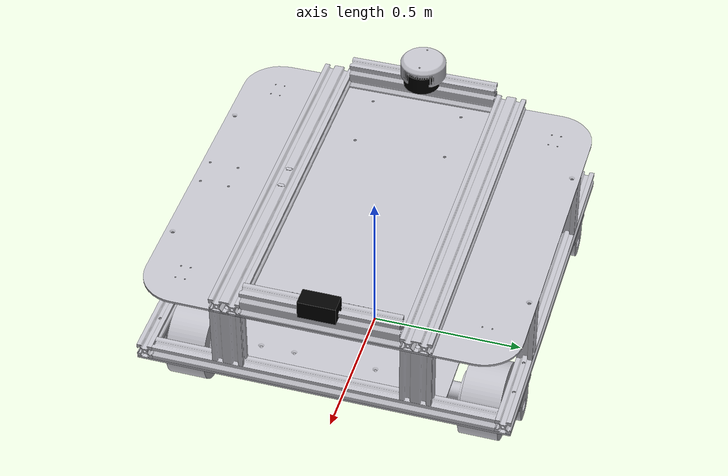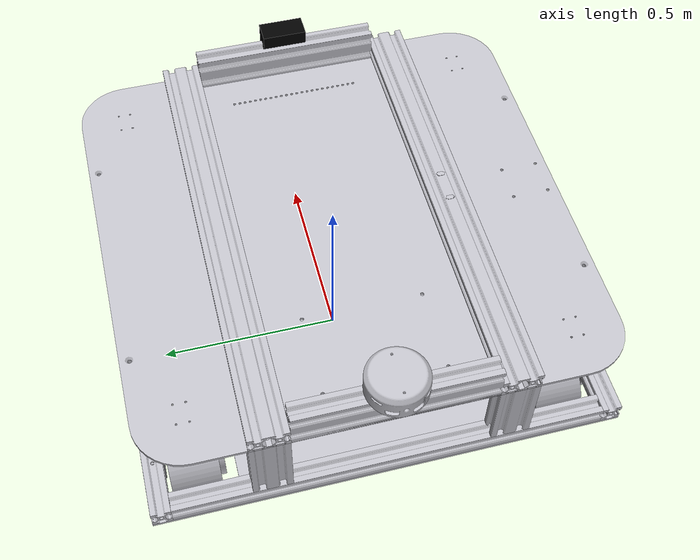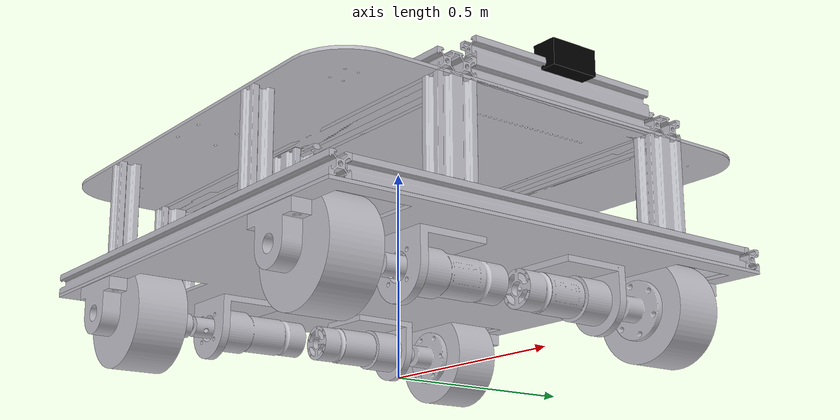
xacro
<?xml version="1.0" ?>
<robot name="robot" xmlns:xacro="http://www.ros.org/wiki/xacro">

<xacro:include filename="$(find robot_description)/urdf/materials.xacro" />
<xacro:include filename="$(find robot_description)/urdf/robot.trans" />
<xacro:include filename="$(find robot_description)/urdf/robot.gazebo" />
<link name="base_link">
  <inertial>
    <origin rpy="0 0 0" xyz="-0.00309061761326777 -0.00030390916317236114 0.09060103797235763"/>
    <mass value="1.590189451657794"/>
    <inertia ixx="0.026345" ixy="-0.0" ixz="0.0" iyy="0.028441" iyz="-0.0" izz="0.054784"/>
  </inertial>
  <visual>
    <origin rpy="0 0 0" xyz="0 0 0"/>
    <geometry>
      <mesh filename="package://robot_description/meshes/base_link.stl" scale="0.0025 0.0025 0.0025"/>
    </geometry>
    <material name="silver"/>
  </visual>
  <collision>
    <origin rpy="0 0 0" xyz="0 0 0"/>
    <geometry>
      <mesh filename="package://robot_description/meshes/base_link.stl" scale="0.0025 0.0025 0.0025"/>
    </geometry>
  </collision>
</link>

<link name="profile_44_1">
  <inertial>
    <origin rpy="0 0 0" xyz="-0.010000347544470378 0.22000009083682795 -0.007040513801406065"/>
    <mass value="0.20401900569973153"/>
    <inertia ixx="0.0033" ixy="0.0" ixz="0.0" iyy="1.7e-05" iyz="-0.0" izz="0.0033"/>
  </inertial>
  <visual>
    <origin rpy="0 0 0" xyz="-0.236909 0.220264 -0.109142"/>
    <geometry>
      <mesh filename="package://robot_description/meshes/profile_44_1.stl" scale="0.0025 0.0025 0.0025"/>
    </geometry>
    <material name="silver"/>
  </visual>
  <collision>
    <origin rpy="0 0 0" xyz="-0.236909 0.220264 -0.109142"/>
    <geometry>
      <mesh filename="package://robot_description/meshes/profile_44_1.stl" scale="0.0025 0.0025 0.0025"/>
    </geometry>
  </collision>
</link>

<link name="profile_442_1">
  <inertial>
    <origin rpy="0 0 0" xyz="0.00999965245553966 0.2200000908368263 -0.007040513801405232"/>
    <mass value="0.20401900569973153"/>
    <inertia ixx="0.0033" ixy="0.0" ixz="0.0" iyy="1.7e-05" iyz="-0.0" izz="0.0033"/>
  </inertial>
  <visual>
    <origin rpy="0 0 0" xyz="0.243091 0.220264 -0.109142"/>
    <geometry>
      <mesh filename="package://robot_description/meshes/profile_442_1.stl" scale="0.0025 0.0025 0.0025"/>
    </geometry>
    <material name="silver"/>
  </visual>
  <collision>
    <origin rpy="0 0 0" xyz="0.243091 0.220264 -0.109142"/>
    <geometry>
      <mesh filename="package://robot_description/meshes/profile_442_1.stl" scale="0.0025 0.0025 0.0025"/>
    </geometry>
  </collision>
</link>

<link name="profile_482_1">
  <inertial>
    <origin rpy="0 0 0" xyz="0.24000039308927013 0.009999495179222134 -0.007040513706950344"/>
    <mass value="0.22200152261792727"/>
    <inertia ixx="1.8e-05" ixy="0.0" ixz="-0.0" iyy="0.004268" iyz="0.0" izz="0.004268"/>
  </inertial>
  <visual>
    <origin rpy="0 0 0" xyz="0.243091 -0.219736 -0.109142"/>
    <geometry>
      <mesh filename="package://robot_description/meshes/profile_482_1.stl" scale="0.0025 0.0025 0.0025"/>
    </geometry>
    <material name="silver"/>
  </visual>
  <collision>
    <origin rpy="0 0 0" xyz="0.243091 -0.219736 -0.109142"/>
    <geometry>
      <mesh filename="package://robot_description/meshes/profile_482_1.stl" scale="0.0025 0.0025 0.0025"/>
    </geometry>
  </collision>
</link>

<link name="middle_rod_2040__1__1">
  <inertial>
    <origin rpy="0 0 0" xyz="0.4730903823867306 0.07914209083682801 -0.21973616546208025"/>
    <mass value="0.3571000353797566"/>
    <inertia ixx="0.005776" ixy="0.0" ixz="-0.0" iyy="7.2e-05" iyz="-0.0" izz="0.005819"/>
  </inertial>
  <visual>
    <origin rpy="0 0 0" xyz="0.476181 0.079406 -0.321838"/>
    <geometry>
      <mesh filename="package://robot_description/meshes/middle_rod_2040__1__1.stl" scale="0.0025 0.0025 0.0025"/>
    </geometry>
    <material name="silver"/>
  </visual>
  <collision>
    <origin rpy="0 0 0" xyz="0.476181 0.079406 -0.321838"/>
    <geometry>
      <mesh filename="package://robot_description/meshes/middle_rod_2040__1__1.stl" scale="0.0025 0.0025 0.0025"/>
    </geometry>
  </collision>
</link>

<link name="bearing_holder_1_1">
  <inertial>
    <origin rpy="0 0 0" xyz="-0.025999615271611348 9.083763691242197e-08 -0.019914289838183344"/>
    <mass value="0.2677927879110607"/>
    <inertia ixx="6.2e-05" ixy="0.0" ixz="-0.0" iyy="0.000112" iyz="-0.0" izz="6.4e-05"/>
  </inertial>
  <visual>
    <origin rpy="0 0 0" xyz="-0.179909 0.230304 -0.089102"/>
    <geometry>
      <mesh filename="package://robot_description/meshes/bearing_holder_1_1.stl" scale="0.0025 0.0025 0.0025"/>
    </geometry>
    <material name="silver"/>
  </visual>
  <collision>
    <origin rpy="0 0 0" xyz="-0.179909 0.230304 -0.089102"/>
    <geometry>
      <mesh filename="package://robot_description/meshes/bearing_holder_1_1.stl" scale="0.0025 0.0025 0.0025"/>
    </geometry>
  </collision>
</link>

<link name="bearing_holder_2_1">
  <inertial>
    <origin rpy="0 0 0" xyz="0.026000380045075794 9.083602606207997e-08 -0.019914289838182178"/>
    <mass value="0.2677927879110607"/>
    <inertia ixx="6.2e-05" ixy="0.0" ixz="0.0" iyy="0.000112" iyz="0.0" izz="6.4e-05"/>
  </inertial>
  <visual>
    <origin rpy="0 0 0" xyz="0.186091 0.230304 -0.089102"/>
    <geometry>
      <mesh filename="package://robot_description/meshes/bearing_holder_2_1.stl" scale="0.0025 0.0025 0.0025"/>
    </geometry>
    <material name="silver"/>
  </visual>
  <collision>
    <origin rpy="0 0 0" xyz="0.186091 0.230304 -0.089102"/>
    <geometry>
      <mesh filename="package://robot_description/meshes/bearing_holder_2_1.stl" scale="0.0025 0.0025 0.0025"/>
    </geometry>
  </collision>
</link>

<link name="bearing_holder_3_1">
  <inertial>
    <origin rpy="0 0 0" xyz="0.026000384724030823 9.083602051096484e-08 -0.019914289838181165"/>
    <mass value="0.2677927879110607"/>
    <inertia ixx="6.2e-05" ixy="0.0" ixz="0.0" iyy="0.000112" iyz="0.0" izz="6.4e-05"/>
  </inertial>
  <visual>
    <origin rpy="0 0 0" xyz="-0.127909 -0.229696 -0.089102"/>
    <geometry>
      <mesh filename="package://robot_description/meshes/bearing_holder_3_1.stl" scale="0.0025 0.0025 0.0025"/>
    </geometry>
    <material name="silver"/>
  </visual>
  <collision>
    <origin rpy="0 0 0" xyz="-0.127909 -0.229696 -0.089102"/>
    <geometry>
      <mesh filename="package://robot_description/meshes/bearing_holder_3_1.stl" scale="0.0025 0.0025 0.0025"/>
    </geometry>
  </collision>
</link>

<link name="bearing_holder_4_1">
  <inertial>
    <origin rpy="0 0 0" xyz="0.026000380045072602 9.083601928971952e-08 -0.01991428983817957"/>
    <mass value="0.2677927879110607"/>
    <inertia ixx="6.2e-05" ixy="0.0" ixz="0.0" iyy="0.000112" iyz="0.0" izz="6.4e-05"/>
  </inertial>
  <visual>
    <origin rpy="0 0 0" xyz="0.186091 -0.229696 -0.089102"/>
    <geometry>
      <mesh filename="package://robot_description/meshes/bearing_holder_4_1.stl" scale="0.0025 0.0025 0.0025"/>
    </geometry>
    <material name="silver"/>
  </visual>
  <collision>
    <origin rpy="0 0 0" xyz="0.186091 -0.229696 -0.089102"/>
    <geometry>
      <mesh filename="package://robot_description/meshes/bearing_holder_4_1.stl" scale="0.0025 0.0025 0.0025"/>
    </geometry>
  </collision>
</link>

<link name="motor_mount_1">
  <inertial>
    <origin rpy="0 0 0" xyz="-0.022785759551452622 0.0020302758013781425 -0.014479924146451828"/>
    <mass value="0.3401197239784417"/>
    <inertia ixx="0.00026" ixy="1e-06" ixz="1e-06" iyy="0.000204" iyz="-7e-05" izz="0.000266"/>
  </inertial>
  <visual>
    <origin rpy="0 0 0" xyz="-0.176909 0.096904 -0.089102"/>
    <geometry>
      <mesh filename="package://robot_description/meshes/motor_mount_1.stl" scale="0.0025 0.0025 0.0025"/>
    </geometry>
    <material name="silver"/>
  </visual>
  <collision>
    <origin rpy="0 0 0" xyz="-0.176909 0.096904 -0.089102"/>
    <geometry>
      <mesh filename="package://robot_description/meshes/motor_mount_1.stl" scale="0.0025 0.0025 0.0025"/>
    </geometry>
  </collision>
</link>

<link name="motor_1">
  <inertial>
    <origin rpy="0 0 0" xyz="5.958466901601067e-06 0.042741875275181834 -5.715485309358559e-06"/>
    <mass value="0.8370137484303758"/>
    <inertia ixx="0.000699" ixy="-0.0" ixz="0.0" iyy="0.000156" iyz="0.0" izz="0.000699"/>
  </inertial>
  <visual>
    <origin rpy="0 0 0" xyz="-0.153909 0.108904 -0.059102"/>
    <geometry>
      <mesh filename="package://robot_description/meshes/motor_1.stl" scale="0.0025 0.0025 0.0025"/>
    </geometry>
    <material name="silver"/>
  </visual>
  <collision>
    <origin rpy="0 0 0" xyz="-0.153909 0.108904 -0.059102"/>
    <geometry>
      <mesh filename="package://robot_description/meshes/motor_1.stl" scale="0.0025 0.0025 0.0025"/>
    </geometry>
  </collision>
</link>

<link name="axle_1">
  <inertial>
    <origin rpy="0 0 0" xyz="3.792954737513732e-07 -0.03564855080346235 -1.654586265983915e-07"/>
    <mass value="0.08717211323633788"/>
    <inertia ixx="0.000102" ixy="0.0" ixz="0.0" iyy="3e-06" iyz="-0.0" izz="0.000102"/>
  </inertial>
  <visual>
    <origin rpy="0 0 0" xyz="-0.153909 0.110904 -0.059102"/>
    <geometry>
      <mesh filename="package://robot_description/meshes/axle_1.stl" scale="0.0025 0.0025 0.0025"/>
    </geometry>
    <material name="silver"/>
  </visual>
  <collision>
    <origin rpy="0 0 0" xyz="-0.153909 0.110904 -0.059102"/>
    <geometry>
      <mesh filename="package://robot_description/meshes/axle_1.stl" scale="0.0025 0.0025 0.0025"/>
    </geometry>
  </collision>
</link>

<link name="hub_1">
  <inertial>
    <origin rpy="0 0 0" xyz="-0.1539096207045421 -0.08569847727407015 -0.13494407083088725"/>
    <mass value="0.17442407392693715"/>
    <inertia ixx="3.4e-05" ixy="0.0" ixz="0.0" iyy="5e-05" iyz="0.0" izz="3.5e-05"/>
  </inertial>
  <visual>
    <origin rpy="0 0 0" xyz="-0.307819 0.072802 -0.194006"/>
    <geometry>
      <mesh filename="package://robot_description/meshes/hub_1.stl" scale="0.0025 0.0025 0.0025"/>
    </geometry>
    <material name="silver"/>
  </visual>
  <collision>
    <origin rpy="0 0 0" xyz="-0.307819 0.072802 -0.194006"/>
    <geometry>
      <mesh filename="package://robot_description/meshes/hub_1.stl" scale="0.0025 0.0025 0.0025"/>
    </geometry>
  </collision>
</link>

<link name="mount2_1">
  <inertial>
    <origin rpy="0 0 0" xyz="0.022786524324914653 -0.04156972419862492 -0.014479924146450274"/>
    <mass value="0.3401197239784417"/>
    <inertia ixx="0.00026" ixy="-1e-06" ixz="-1e-06" iyy="0.000204" iyz="-7e-05" izz="0.000266"/>
  </inertial>
  <visual>
    <origin rpy="0 0 0" xyz="0.183091 0.053304 -0.089102"/>
    <geometry>
      <mesh filename="package://robot_description/meshes/mount2_1.stl" scale="0.0025 0.0025 0.0025"/>
    </geometry>
    <material name="silver"/>
  </visual>
  <collision>
    <origin rpy="0 0 0" xyz="0.183091 0.053304 -0.089102"/>
    <geometry>
      <mesh filename="package://robot_description/meshes/mount2_1.stl" scale="0.0025 0.0025 0.0025"/>
    </geometry>
  </collision>
</link>

<link name="motor2_1">
  <inertial>
    <origin rpy="0 0 0" xyz="-5.193631712779867e-06 0.042741875206195226 -5.715512338480555e-06"/>
    <mass value="0.8370137452657838"/>
    <inertia ixx="0.000699" ixy="0.0" ixz="-0.0" iyy="0.000156" iyz="0.0" izz="0.000699"/>
  </inertial>
  <visual>
    <origin rpy="0 0 0" xyz="0.160091 0.108904 -0.059102"/>
    <geometry>
      <mesh filename="package://robot_description/meshes/motor2_1.stl" scale="0.0025 0.0025 0.0025"/>
    </geometry>
    <material name="silver"/>
  </visual>
  <collision>
    <origin rpy="0 0 0" xyz="0.160091 0.108904 -0.059102"/>
    <geometry>
      <mesh filename="package://robot_description/meshes/motor2_1.stl" scale="0.0025 0.0025 0.0025"/>
    </geometry>
  </collision>
</link>

<link name="axle_2_1">
  <inertial>
    <origin rpy="0 0 0" xyz="3.8547488298568133e-07 -0.035648550803464824 -1.6546055164878837e-07"/>
    <mass value="0.08717211323633788"/>
    <inertia ixx="0.000102" ixy="0.0" ixz="-0.0" iyy="3e-06" iyz="-0.0" izz="0.000102"/>
  </inertial>
  <visual>
    <origin rpy="0 0 0" xyz="0.160091 0.110904 -0.059102"/>
    <geometry>
      <mesh filename="package://robot_description/meshes/axle_2_1.stl" scale="0.0025 0.0025 0.0025"/>
    </geometry>
    <material name="silver"/>
  </visual>
  <collision>
    <origin rpy="0 0 0" xyz="0.160091 0.110904 -0.059102"/>
    <geometry>
      <mesh filename="package://robot_description/meshes/axle_2_1.stl" scale="0.0025 0.0025 0.0025"/>
    </geometry>
  </collision>
</link>

<link name="hub_2_1">
  <inertial>
    <origin rpy="0 0 0" xyz="0.050816227046964035 0.03250552272592713 -0.20311671027306205"/>
    <mass value="0.1744240739269362"/>
    <inertia ixx="3.4e-05" ixy="-0.0" ixz="-0.0" iyy="5e-05" iyz="0.0" izz="3.4e-05"/>
  </inertial>
  <visual>
    <origin rpy="0 0 0" xyz="0.210871 0.191006 -0.262201"/>
    <geometry>
      <mesh filename="package://robot_description/meshes/hub_2_1.stl" scale="0.0025 0.0025 0.0025"/>
    </geometry>
    <material name="silver"/>
  </visual>
  <collision>
    <origin rpy="0 0 0" xyz="0.210871 0.191006 -0.262201"/>
    <geometry>
      <mesh filename="package://robot_description/meshes/hub_2_1.stl" scale="0.0025 0.0025 0.0025"/>
    </geometry>
  </collision>
</link>

<link name="mount_4_1">
  <inertial>
    <origin rpy="0 0 0" xyz="0.022786524324913737 -0.0020300941277232587 -0.014479924146449538"/>
    <mass value="0.3401197239784417"/>
    <inertia ixx="0.00026" ixy="1e-06" ixz="-1e-06" iyy="0.000204" iyz="7e-05" izz="0.000266"/>
  </inertial>
  <visual>
    <origin rpy="0 0 0" xyz="0.183091 -0.096296 -0.089102"/>
    <geometry>
      <mesh filename="package://robot_description/meshes/mount_4_1.stl" scale="0.0025 0.0025 0.0025"/>
    </geometry>
    <material name="silver"/>
  </visual>
  <collision>
    <origin rpy="0 0 0" xyz="0.183091 -0.096296 -0.089102"/>
    <geometry>
      <mesh filename="package://robot_description/meshes/mount_4_1.stl" scale="0.0025 0.0025 0.0025"/>
    </geometry>
  </collision>
</link>

<link name="mount_3_1">
  <inertial>
    <origin rpy="0 0 0" xyz="-0.022785759551454204 -0.002030094127721621 -0.014479924146450551"/>
    <mass value="0.3401197239784417"/>
    <inertia ixx="0.00026" ixy="-1e-06" ixz="1e-06" iyy="0.000204" iyz="7e-05" izz="0.000266"/>
  </inertial>
  <visual>
    <origin rpy="0 0 0" xyz="-0.176909 -0.096296 -0.089102"/>
    <geometry>
      <mesh filename="package://robot_description/meshes/mount_3_1.stl" scale="0.0025 0.0025 0.0025"/>
    </geometry>
    <material name="silver"/>
  </visual>
  <collision>
    <origin rpy="0 0 0" xyz="-0.176909 -0.096296 -0.089102"/>
    <geometry>
      <mesh filename="package://robot_description/meshes/mount_3_1.stl" scale="0.0025 0.0025 0.0025"/>
    </geometry>
  </collision>
</link>

<link name="motor_4_1">
  <inertial>
    <origin rpy="0 0 0" xyz="-5.193693440291858e-06 -0.04274169360152601 -5.715485306978518e-06"/>
    <mass value="0.8370137484303758"/>
    <inertia ixx="0.000699" ixy="-0.0" ixz="-0.0" iyy="0.000156" iyz="-0.0" izz="0.000699"/>
  </inertial>
  <visual>
    <origin rpy="0 0 0" xyz="0.160091 -0.108296 -0.059102"/>
    <geometry>
      <mesh filename="package://robot_description/meshes/motor_4_1.stl" scale="0.0025 0.0025 0.0025"/>
    </geometry>
    <material name="silver"/>
  </visual>
  <collision>
    <origin rpy="0 0 0" xyz="0.160091 -0.108296 -0.059102"/>
    <geometry>
      <mesh filename="package://robot_description/meshes/motor_4_1.stl" scale="0.0025 0.0025 0.0025"/>
    </geometry>
  </collision>
</link>

<link name="axle_4_1">
  <inertial>
    <origin rpy="0 0 0" xyz="3.854781351342318e-07 0.03564873247711814 -1.654586286523041e-07"/>
    <mass value="0.08717211323633788"/>
    <inertia ixx="0.000102" ixy="0.0" ixz="0.0" iyy="3e-06" iyz="0.0" izz="0.000102"/>
  </inertial>
  <visual>
    <origin rpy="0 0 0" xyz="0.160091 -0.110296 -0.059102"/>
    <geometry>
      <mesh filename="package://robot_description/meshes/axle_4_1.stl" scale="0.0025 0.0025 0.0025"/>
    </geometry>
    <material name="silver"/>
  </visual>
  <collision>
    <origin rpy="0 0 0" xyz="0.160091 -0.110296 -0.059102"/>
    <geometry>
      <mesh filename="package://robot_description/meshes/axle_4_1.stl" scale="0.0025 0.0025 0.0025"/>
    </geometry>
  </collision>
</link>

<link name="motor_3_1">
  <inertial>
    <origin rpy="0 0 0" xyz="5.958405172951098e-06 -0.04274169353254009 -5.7155123389107665e-06"/>
    <mass value="0.8370137452657838"/>
    <inertia ixx="0.000699" ixy="0.0" ixz="0.0" iyy="0.000156" iyz="-0.0" izz="0.000699"/>
  </inertial>
  <visual>
    <origin rpy="0 0 0" xyz="-0.153909 -0.108296 -0.059102"/>
    <geometry>
      <mesh filename="package://robot_description/meshes/motor_3_1.stl" scale="0.0025 0.0025 0.0025"/>
    </geometry>
    <material name="silver"/>
  </visual>
  <collision>
    <origin rpy="0 0 0" xyz="-0.153909 -0.108296 -0.059102"/>
    <geometry>
      <mesh filename="package://robot_description/meshes/motor_3_1.stl" scale="0.0025 0.0025 0.0025"/>
    </geometry>
  </collision>
</link>

<link name="axle_3_1">
  <inertial>
    <origin rpy="0 0 0" xyz="3.7929209714682166e-07 0.03564873247711958 -1.6546275848072778e-07"/>
    <mass value="0.08717211323633788"/>
    <inertia ixx="0.000102" ixy="-0.0" ixz="0.0" iyy="3e-06" iyz="-0.0" izz="0.000102"/>
  </inertial>
  <visual>
    <origin rpy="0 0 0" xyz="-0.153909 -0.110296 -0.059102"/>
    <geometry>
      <mesh filename="package://robot_description/meshes/axle_3_1.stl" scale="0.0025 0.0025 0.0025"/>
    </geometry>
    <material name="silver"/>
  </visual>
  <collision>
    <origin rpy="0 0 0" xyz="-0.153909 -0.110296 -0.059102"/>
    <geometry>
      <mesh filename="package://robot_description/meshes/axle_3_1.stl" scale="0.0025 0.0025 0.0025"/>
    </geometry>
  </collision>
</link>

<link name="hub_3_1">
  <inertial>
    <origin rpy="0 0 0" xyz="-0.10173947820980642 -0.032505341052272374 -0.17709339992491485"/>
    <mass value="0.1744240739269362"/>
    <inertia ixx="3.4e-05" ixy="0.0" ixz="0.0" iyy="5e-05" iyz="0.0" izz="3.4e-05"/>
  </inertial>
  <visual>
    <origin rpy="0 0 0" xyz="-0.255688 -0.190398 -0.236203"/>
    <geometry>
      <mesh filename="package://robot_description/meshes/hub_3_1.stl" scale="0.0025 0.0025 0.0025"/>
    </geometry>
    <material name="silver"/>
  </visual>
  <collision>
    <origin rpy="0 0 0" xyz="-0.255688 -0.190398 -0.236203"/>
    <geometry>
      <mesh filename="package://robot_description/meshes/hub_3_1.stl" scale="0.0025 0.0025 0.0025"/>
    </geometry>
  </collision>
</link>

<link name="Perfil2020_10_v7_1">
  <inertial>
    <origin rpy="0 0 0" xyz="-0.20710126927393502 0.24309036090561612 0.289803834537948"/>
    <mass value="0.039412762464719274"/>
    <inertia ixx="2.5e-05" ixy="-0.0" ixz="-0.0" iyy="2.5e-05" iyz="-0.0" izz="3e-06"/>
  </inertial>
  <visual>
    <origin rpy="0 0 0" xyz="-0.084011 0.473355 0.135202"/>
    <geometry>
      <mesh filename="package://robot_description/meshes/Perfil2020_10_v7_1.stl" scale="0.0025 0.0025 0.0025"/>
    </geometry>
    <material name="silver"/>
  </visual>
  <collision>
    <origin rpy="0 0 0" xyz="-0.084011 0.473355 0.135202"/>
    <geometry>
      <mesh filename="package://robot_description/meshes/Perfil2020_10_v7_1.stl" scale="0.0025 0.0025 0.0025"/>
    </geometry>
  </collision>
</link>

<link name="Perfil2020_10_v7__1__1">
  <inertial>
    <origin rpy="0 0 0" xyz="-0.20710126927393868 0.2430903609056087 -0.1701961654620522"/>
    <mass value="0.039412762464719274"/>
    <inertia ixx="2.5e-05" ixy="-0.0" ixz="-0.0" iyy="2.5e-05" iyz="-0.0" izz="3e-06"/>
  </inertial>
  <visual>
    <origin rpy="0 0 0" xyz="-0.084011 0.013355 -0.324798"/>
    <geometry>
      <mesh filename="package://robot_description/meshes/Perfil2020_10_v7__1__1.stl" scale="0.0025 0.0025 0.0025"/>
    </geometry>
    <material name="silver"/>
  </visual>
  <collision>
    <origin rpy="0 0 0" xyz="-0.084011 0.013355 -0.324798"/>
    <geometry>
      <mesh filename="package://robot_description/meshes/Perfil2020_10_v7__1__1.stl" scale="0.0025 0.0025 0.0025"/>
    </geometry>
  </collision>
</link>

<link name="Perfil2020_10_v7__7__1">
  <inertial>
    <origin rpy="0 0 0" xyz="0.032898034047395996 -0.23690963909438784 -0.18427616546207778"/>
    <mass value="0.039412762464719114"/>
    <inertia ixx="2.5e-05" ixy="0.0" ixz="-0.0" iyy="2.5e-05" iyz="0.0" izz="3e-06"/>
  </inertial>
  <visual>
    <origin rpy="0 0 0" xyz="-0.084011 -0.466645 -0.338878"/>
    <geometry>
      <mesh filename="package://robot_description/meshes/Perfil2020_10_v7__7__1.stl" scale="0.0025 0.0025 0.0025"/>
    </geometry>
    <material name="silver"/>
  </visual>
  <collision>
    <origin rpy="0 0 0" xyz="-0.084011 -0.466645 -0.338878"/>
    <geometry>
      <mesh filename="package://robot_description/meshes/Perfil2020_10_v7__7__1.stl" scale="0.0025 0.0025 0.0025"/>
    </geometry>
  </collision>
</link>

<link name="Perfil2020_10_v7__5__1">
  <inertial>
    <origin rpy="0 0 0" xyz="0.03289873072605677 -0.23690963909438167 0.2898038345379474"/>
    <mass value="0.039412762464719274"/>
    <inertia ixx="2.5e-05" ixy="-0.0" ixz="-0.0" iyy="2.5e-05" iyz="-0.0" izz="3e-06"/>
  </inertial>
  <visual>
    <origin rpy="0 0 0" xyz="-0.084011 -0.006645 0.135202"/>
    <geometry>
      <mesh filename="package://robot_description/meshes/Perfil2020_10_v7__5__1.stl" scale="0.0025 0.0025 0.0025"/>
    </geometry>
    <material name="silver"/>
  </visual>
  <collision>
    <origin rpy="0 0 0" xyz="-0.084011 -0.006645 0.135202"/>
    <geometry>
      <mesh filename="package://robot_description/meshes/Perfil2020_10_v7__5__1.stl" scale="0.0025 0.0025 0.0025"/>
    </geometry>
  </collision>
</link>

<link name="Perfil2040_height_v4_1">
  <inertial>
    <origin rpy="0 0 0" xyz="-0.08710161761325347 -0.34690890916317574 -0.18441919743626498"/>
    <mass value="0.06866840258532259"/>
    <inertia ixx="4.4e-05" ixy="0.0" ixz="0.0" iyy="5.2e-05" iyz="-0.0" izz="1.4e-05"/>
  </inertial>
  <visual>
    <origin rpy="0 0 0" xyz="-0.084011 -0.466645 -0.338878"/>
    <geometry>
      <mesh filename="package://robot_description/meshes/Perfil2040_height_v4_1.stl" scale="0.0025 0.0025 0.0025"/>
    </geometry>
    <material name="silver"/>
  </visual>
  <collision>
    <origin rpy="0 0 0" xyz="-0.084011 -0.466645 -0.338878"/>
    <geometry>
      <mesh filename="package://robot_description/meshes/Perfil2040_height_v4_1.stl" scale="0.0025 0.0025 0.0025"/>
    </geometry>
  </collision>
</link>

<link name="Perfil2040_height_v4__1__1">
  <inertial>
    <origin rpy="0 0 0" xyz="-0.0871016176132513 -0.126908909163168 0.2896608025637357"/>
    <mass value="0.06866840258532259"/>
    <inertia ixx="4.4e-05" ixy="0.0" ixz="0.0" iyy="5.2e-05" iyz="-0.0" izz="1.4e-05"/>
  </inertial>
  <visual>
    <origin rpy="0 0 0" xyz="-0.084011 -0.006645 0.135202"/>
    <geometry>
      <mesh filename="package://robot_description/meshes/Perfil2040_height_v4__1__1.stl" scale="0.0025 0.0025 0.0025"/>
    </geometry>
    <material name="silver"/>
  </visual>
  <collision>
    <origin rpy="0 0 0" xyz="-0.084011 -0.006645 0.135202"/>
    <geometry>
      <mesh filename="package://robot_description/meshes/Perfil2040_height_v4__1__1.stl" scale="0.0025 0.0025 0.0025"/>
    </geometry>
  </collision>
</link>

<link name="hub4_1">
  <inertial>
    <origin rpy="0 0 0" xyz="-0.15417033010791092 0.08569865894772645 0.14101496606385128"/>
    <mass value="0.17442407392693715"/>
    <inertia ixx="3.4e-05" ixy="-0.0" ixz="0.0" iyy="5e-05" iyz="-0.0" izz="3.5e-05"/>
  </inertial>
  <visual>
    <origin rpy="0 0 0" xyz="0.005922 -0.072194 0.081953"/>
    <geometry>
      <mesh filename="package://robot_description/meshes/hub4_1.stl" scale="0.0025 0.0025 0.0025"/>
    </geometry>
    <material name="silver"/>
  </visual>
  <collision>
    <origin rpy="0 0 0" xyz="0.005922 -0.072194 0.081953"/>
    <geometry>
      <mesh filename="package://robot_description/meshes/hub4_1.stl" scale="0.0025 0.0025 0.0025"/>
    </geometry>
  </collision>
</link>

<link name="profile_48_1">
  <inertial>
    <origin rpy="0 0 0" xyz="-0.09210160691072679 0.013130495179229734 0.2533034862930502"/>
    <mass value="0.22200152261792727"/>
    <inertia ixx="1.8e-05" ixy="0.0" ixz="-0.0" iyy="0.004268" iyz="0.0" izz="0.004268"/>
  </inertial>
  <visual>
    <origin rpy="0 0 0" xyz="-0.089011 0.243395 0.151202"/>
    <geometry>
      <mesh filename="package://robot_description/meshes/profile_48_1.stl" scale="0.0025 0.0025 0.0025"/>
    </geometry>
    <material name="silver"/>
  </visual>
  <collision>
    <origin rpy="0 0 0" xyz="-0.089011 0.243395 0.151202"/>
    <geometry>
      <mesh filename="package://robot_description/meshes/profile_48_1.stl" scale="0.0025 0.0025 0.0025"/>
    </geometry>
  </collision>
</link>

<link name="Wheel_v1_1">
  <inertial>
    <origin rpy="0 0 0" xyz="3.854779776768513e-07 0.025250091626587395 -1.6546207678991287e-07"/>
    <mass value="3.1135146692483344"/>
    <inertia ixx="0.002608" ixy="-0.0" ixz="-0.0" iyy="0.003892" iyz="0.0" izz="0.002608"/>
  </inertial>
  <visual>
    <origin rpy="0 0 0" xyz="0.160091 -0.165696 -0.059102"/>
    <geometry>
      <mesh filename="package://robot_description/meshes/Wheel_v1_1.stl" scale="0.0025 0.0025 0.0025"/>
    </geometry>
    <material name="silver"/>
  </visual>
  <collision>
    <origin rpy="0 0 0" xyz="0.160091 -0.165696 -0.059102"/>
    <geometry>
      <mesh filename="package://robot_description/meshes/Wheel_v1_1.stl" scale="0.0025 0.0025 0.0025"/>
    </geometry>
  </collision>
</link>

<link name="Wheel_v1__1__1">
  <inertial>
    <origin rpy="0 0 0" xyz="3.8547797978627507e-07 -0.02524990995293344 -1.6546207739359664e-07"/>
    <mass value="3.1135146692483344"/>
    <inertia ixx="0.002608" ixy="0.0" ixz="-0.0" iyy="0.003892" iyz="-0.0" izz="0.002608"/>
  </inertial>
  <visual>
    <origin rpy="0 0 0" xyz="0.160091 0.166304 -0.059102"/>
    <geometry>
      <mesh filename="package://robot_description/meshes/Wheel_v1__1__1.stl" scale="0.0025 0.0025 0.0025"/>
    </geometry>
    <material name="silver"/>
  </visual>
  <collision>
    <origin rpy="0 0 0" xyz="0.160091 0.166304 -0.059102"/>
    <geometry>
      <mesh filename="package://robot_description/meshes/Wheel_v1__1__1.stl" scale="0.0025 0.0025 0.0025"/>
    </geometry>
  </collision>
</link>

<link name="Wheel_v1__3__1">
  <inertial>
    <origin rpy="0 0 0" xyz="3.792954823833572e-07 -0.025249909952931027 -1.654620784691252e-07"/>
    <mass value="3.1135146692483344"/>
    <inertia ixx="0.002608" ixy="-0.0" ixz="0.0" iyy="0.003892" iyz="0.0" izz="0.002608"/>
  </inertial>
  <visual>
    <origin rpy="0 0 0" xyz="-0.153909 0.166304 -0.059102"/>
    <geometry>
      <mesh filename="package://robot_description/meshes/Wheel_v1__3__1.stl" scale="0.0025 0.0025 0.0025"/>
    </geometry>
    <material name="silver"/>
  </visual>
  <collision>
    <origin rpy="0 0 0" xyz="-0.153909 0.166304 -0.059102"/>
    <geometry>
      <mesh filename="package://robot_description/meshes/Wheel_v1__3__1.stl" scale="0.0025 0.0025 0.0025"/>
    </geometry>
  </collision>
</link>

<link name="Wheel_v1__2__1">
  <inertial>
    <origin rpy="0 0 0" xyz="3.792954809955784e-07 0.025250091626588478 -1.654620777752358e-07"/>
    <mass value="3.1135146692483344"/>
    <inertia ixx="0.002608" ixy="-0.0" ixz="0.0" iyy="0.003892" iyz="0.0" izz="0.002608"/>
  </inertial>
  <visual>
    <origin rpy="0 0 0" xyz="-0.153909 -0.165696 -0.059102"/>
    <geometry>
      <mesh filename="package://robot_description/meshes/Wheel_v1__2__1.stl" scale="0.0025 0.0025 0.0025"/>
    </geometry>
    <material name="silver"/>
  </visual>
  <collision>
    <origin rpy="0 0 0" xyz="-0.153909 -0.165696 -0.059102"/>
    <geometry>
      <mesh filename="package://robot_description/meshes/Wheel_v1__2__1.stl" scale="0.0025 0.0025 0.0025"/>
    </geometry>
  </collision>
</link>

<link name="Perfil2040_height_v5_1">
  <inertial>
    <origin rpy="0 0 0" xyz="-0.317101617613266 0.1331710908368423 -0.1844191974362635"/>
    <mass value="0.06866840258532278"/>
    <inertia ixx="5.2e-05" ixy="-0.0" ixz="0.0" iyy="4.4e-05" iyz="0.0" izz="1.4e-05"/>
  </inertial>
  <visual>
    <origin rpy="0 0 0" xyz="-0.084011 0.013355 -0.338878"/>
    <geometry>
      <mesh filename="package://robot_description/meshes/Perfil2040_height_v5_1.stl" scale="0.0025 0.0025 0.0025"/>
    </geometry>
    <material name="silver"/>
  </visual>
  <collision>
    <origin rpy="0 0 0" xyz="-0.084011 0.013355 -0.338878"/>
    <geometry>
      <mesh filename="package://robot_description/meshes/Perfil2040_height_v5_1.stl" scale="0.0025 0.0025 0.0025"/>
    </geometry>
  </collision>
</link>

<link name="Perfil2040_height_v5__1__1">
  <inertial>
    <origin rpy="0 0 0" xyz="-0.3171016176132646 0.35309109083684914 0.27558080256373674"/>
    <mass value="0.06866840258532278"/>
    <inertia ixx="5.2e-05" ixy="0.0" ixz="0.0" iyy="4.4e-05" iyz="0.0" izz="1.4e-05"/>
  </inertial>
  <visual>
    <origin rpy="0 0 0" xyz="-0.084011 0.473355 0.121122"/>
    <geometry>
      <mesh filename="package://robot_description/meshes/Perfil2040_height_v5__1__1.stl" scale="0.0025 0.0025 0.0025"/>
    </geometry>
    <material name="silver"/>
  </visual>
  <collision>
    <origin rpy="0 0 0" xyz="-0.084011 0.473355 0.121122"/>
    <geometry>
      <mesh filename="package://robot_description/meshes/Perfil2040_height_v5__1__1.stl" scale="0.0025 0.0025 0.0025"/>
    </geometry>
  </collision>
</link>

<link name="Perfil2040_height_v5__2__1">
  <inertial>
    <origin rpy="0 0 0" xyz="0.1428983823867281 -0.12682890916314635 0.27558080256373507"/>
    <mass value="0.06866840258532278"/>
    <inertia ixx="5.2e-05" ixy="-0.0" ixz="0.0" iyy="4.4e-05" iyz="0.0" izz="1.4e-05"/>
  </inertial>
  <visual>
    <origin rpy="0 0 0" xyz="-0.084011 -0.006645 0.121122"/>
    <geometry>
      <mesh filename="package://robot_description/meshes/Perfil2040_height_v5__2__1.stl" scale="0.0025 0.0025 0.0025"/>
    </geometry>
    <material name="silver"/>
  </visual>
  <collision>
    <origin rpy="0 0 0" xyz="-0.084011 -0.006645 0.121122"/>
    <geometry>
      <mesh filename="package://robot_description/meshes/Perfil2040_height_v5__2__1.stl" scale="0.0025 0.0025 0.0025"/>
    </geometry>
  </collision>
</link>

<link name="Perfil2040_height_v5__3__1">
  <inertial>
    <origin rpy="0 0 0" xyz="0.14289838238672622 -0.34690890916315426 -0.17033919743626638"/>
    <mass value="0.06866840258532278"/>
    <inertia ixx="5.2e-05" ixy="0.0" ixz="0.0" iyy="4.4e-05" iyz="0.0" izz="1.4e-05"/>
  </inertial>
  <visual>
    <origin rpy="0 0 0" xyz="-0.084011 -0.466645 -0.324798"/>
    <geometry>
      <mesh filename="package://robot_description/meshes/Perfil2040_height_v5__3__1.stl" scale="0.0025 0.0025 0.0025"/>
    </geometry>
    <material name="silver"/>
  </visual>
  <collision>
    <origin rpy="0 0 0" xyz="-0.084011 -0.466645 -0.324798"/>
    <geometry>
      <mesh filename="package://robot_description/meshes/Perfil2040_height_v5__3__1.stl" scale="0.0025 0.0025 0.0025"/>
    </geometry>
  </collision>
</link>

<link name="2040_rails_v3_1">
  <inertial>
    <origin rpy="0 0 0" xyz="0.23989985827551433 -0.017039909163170455 0.009999834537921998"/>
    <mass value="0.38924684343760535"/>
    <inertia ixx="7.8e-05" ixy="-0.0" ixz="0.0" iyy="0.007491" iyz="-0.0" izz="0.007537"/>
  </inertial>
  <visual>
    <origin rpy="0 0 0" xyz="0.243091 -0.136856 -0.197102"/>
    <geometry>
      <mesh filename="package://robot_description/meshes/2040_rails_v3_1.stl" scale="0.0025 0.0025 0.0025"/>
    </geometry>
    <material name="silver"/>
  </visual>
  <collision>
    <origin rpy="0 0 0" xyz="0.243091 -0.136856 -0.197102"/>
    <geometry>
      <mesh filename="package://robot_description/meshes/2040_rails_v3_1.stl" scale="0.0025 0.0025 0.0025"/>
    </geometry>
  </collision>
</link>

<link name="2040_rails_v3__1__1">
  <inertial>
    <origin rpy="0 0 0" xyz="0.23989985827551524 -0.01703990916316371 0.009999834537923052"/>
    <mass value="0.38924684343760535"/>
    <inertia ixx="7.8e-05" ixy="-0.0" ixz="0.0" iyy="0.007491" iyz="-0.0" izz="0.007537"/>
  </inertial>
  <visual>
    <origin rpy="0 0 0" xyz="0.243091 0.103224 -0.197102"/>
    <geometry>
      <mesh filename="package://robot_description/meshes/2040_rails_v3__1__1.stl" scale="0.0025 0.0025 0.0025"/>
    </geometry>
    <material name="silver"/>
  </visual>
  <collision>
    <origin rpy="0 0 0" xyz="0.243091 0.103224 -0.197102"/>
    <geometry>
      <mesh filename="package://robot_description/meshes/2040_rails_v3__1__1.stl" scale="0.0025 0.0025 0.0025"/>
    </geometry>
  </collision>
</link>

<link name="second_floor_v20_1">
  <inertial>
    <origin rpy="0 0 0" xyz="-0.12010238819103765 -0.23130653785709582 0.0015177954565668839"/>
    <mass value="1.8496378129915427"/>
    <inertia ixx="0.034902" ixy="0.0" ixz="-0.0" iyy="0.034802" iyz="4e-06" izz="0.069699"/>
  </inertial>
  <visual>
    <origin rpy="0 0 0" xyz="-0.116909 -0.229736 -0.197102"/>
    <geometry>
      <mesh filename="package://robot_description/meshes/second_floor_v20_1.stl" scale="0.0025 0.0025 0.0025"/>
    </geometry>
    <material name="silver"/>
  </visual>
  <collision>
    <origin rpy="0 0 0" xyz="-0.116909 -0.229736 -0.197102"/>
    <geometry>
      <mesh filename="package://robot_description/meshes/second_floor_v20_1.stl" scale="0.0025 0.0025 0.0025"/>
    </geometry>
  </collision>
</link>

<link name="Perfil2040_200_v2_1">
  <inertial>
    <origin rpy="0 0 0" xyz="-0.009999617613264206 -0.09999990916317342 0.01703983453794075"/>
    <mass value="0.16231819789988966"/>
    <inertia ixx="0.000567" ixy="0.0" ixz="-0.0" iyy="3.3e-05" iyz="0.0" izz="0.000548"/>
  </inertial>
  <visual>
    <origin rpy="0 0 0" xyz="-0.236909 -0.099816 -0.200062"/>
    <geometry>
      <mesh filename="package://robot_description/meshes/Perfil2040_200_v2_1.stl" scale="0.0025 0.0025 0.0025"/>
    </geometry>
    <material name="silver"/>
  </visual>
  <collision>
    <origin rpy="0 0 0" xyz="-0.236909 -0.099816 -0.200062"/>
    <geometry>
      <mesh filename="package://robot_description/meshes/Perfil2040_200_v2_1.stl" scale="0.0025 0.0025 0.0025"/>
    </geometry>
  </collision>
</link>

<link name="Perfil2040_200_v2__1__1">
  <inertial>
    <origin rpy="0 0 0" xyz="0.010000382386735257 -0.09999990916317802 0.017039834537943582"/>
    <mass value="0.16231819789988966"/>
    <inertia ixx="0.000567" ixy="0.0" ixz="-0.0" iyy="3.3e-05" iyz="0.0" izz="0.000548"/>
  </inertial>
  <visual>
    <origin rpy="0 0 0" xyz="0.243091 -0.099816 -0.200062"/>
    <geometry>
      <mesh filename="package://robot_description/meshes/Perfil2040_200_v2__1__1.stl" scale="0.0025 0.0025 0.0025"/>
    </geometry>
    <material name="silver"/>
  </visual>
  <collision>
    <origin rpy="0 0 0" xyz="0.243091 -0.099816 -0.200062"/>
    <geometry>
      <mesh filename="package://robot_description/meshes/Perfil2040_200_v2__1__1.stl" scale="0.0025 0.0025 0.0025"/>
    </geometry>
  </collision>
</link>

<link name="lidar-intel">
  <inertial>
    <origin rpy="0 0 0" xyz="-0.00018740221523455558 -0.33078445920422045 -0.20862707229499267"/>
    <mass value="0.41232828494277746"/>
    <inertia ixx="0.000118" ixy="1e-06" ixz="0.0" iyy="0.000108" iyz="0.0" izz="0.000186"/>
  </inertial>
  <visual>
    <origin rpy="0 0 0" xyz="0.232907 -0.330818 -0.460192"/>
    <geometry>
      <mesh filename="package://robot_description/meshes/lidar-intel_v1_1.stl" scale="0.0025 0.0025 0.0025"/>
    </geometry>
    <material name="silver"/>
  </visual>
  <collision>
    <origin rpy="0 0 0" xyz="0.232907 -0.330818 -0.460192"/>
    <geometry>
      <mesh filename="package://robot_description/meshes/lidar-intel_v1_1.stl" scale="0.0025 0.0025 0.0025"/>
    </geometry>
  </collision>
</link>

<link name="lidar">
    <inertial>
      <origin xyz="0 0 0" rpy="0 0 0" />
      <mass value="0.01" />
      <inertia ixx="1e-6" ixy="0" ixz="0" iyy="1e-6" iyz="0" izz="1e-6" />
    </inertial>
    <visual>
      <origin xyz="0 0 0" rpy="0 0 0" />
      <geometry>
        <cylinder radius="0.06" length="0.06"/>
      </geometry>
      <material name="">
        <color rgba="0 0 0 1" />
      </material>
    </visual>
    <collision>
      <origin xyz="0 0 0" rpy="0 0 0" />
      <geometry>
        <cylinder radius="0.06" length="0.06"/>
      </geometry>
    </collision>
</link>

<link name="depth_cam">
    <inertial>
      <origin xyz="0 0 0" rpy="0 0 0" />
      <mass value="0.01" />
      <inertia ixx="1e-6" ixy="0" ixz="0" iyy="1e-6" iyz="0" izz="1e-6" />
    </inertial>
    <visual>
      <origin xyz="0 0 0" rpy="0 0 0" />
      <geometry>
        <box size="0.06 0.12 0.06"/>
      </geometry>
      <material name="">
        <color rgba="0 0 0 1" />
      </material>
    </visual>
    <collision>
      <origin xyz="0 0 0" rpy="0 0 0" />
      <geometry>
        <box size="0.06 0.12 0.06"/>
      </geometry>
    </collision>
</link>

<joint name="Rigid1" type="fixed">
  <origin rpy="0 0 0" xyz="0.147898 0.023131 0.260344"/>
  <parent link="profile_48_1"/>
  <child link="profile_44_1"/>
</joint>

<joint name="Rigid2" type="fixed">
  <origin rpy="0 0 0" xyz="-0.332102 0.023131 0.260344"/>
  <parent link="profile_48_1"/>
  <child link="profile_442_1"/>
</joint>

<joint name="Rigid3" type="fixed">
  <origin rpy="0 0 0" xyz="0.0 0.44 0.0"/>
  <parent link="profile_442_1"/>
  <child link="profile_482_1"/>
</joint>

<joint name="Rigid5" type="fixed">
  <origin rpy="0 0 0" xyz="-0.23309 0.140858 0.212696"/>
  <parent link="profile_442_1"/>
  <child link="middle_rod_2040__1__1"/>
</joint>

<joint name="Rigid6" type="fixed">
  <origin rpy="0 0 0" xyz="0.179909 -0.230304 0.089102"/>
  <parent link="base_link"/>
  <child link="bearing_holder_1_1"/>
</joint>

<joint name="Rigid7" type="fixed">
  <origin rpy="0 0 0" xyz="-0.186091 -0.230304 0.089102"/>
  <parent link="base_link"/>
  <child link="bearing_holder_2_1"/>
</joint>

<joint name="Rigid8" type="fixed">
  <origin rpy="0 0 0" xyz="0.127909 0.229696 0.089102"/>
  <parent link="base_link"/>
  <child link="bearing_holder_3_1"/>
</joint>

<joint name="Rigid9" type="fixed">
  <origin rpy="0 0 0" xyz="-0.186091 0.229696 0.089102"/>
  <parent link="base_link"/>
  <child link="bearing_holder_4_1"/>
</joint>

<joint name="Rigid10" type="fixed">
  <origin rpy="0 0 0" xyz="0.176909 -0.096904 0.089102"/>
  <parent link="base_link"/>
  <child link="motor_mount_1"/>
</joint>

<joint name="motor1" type="fixed">
  <origin rpy="0 0 0" xyz="-0.023 -0.012 -0.03"/>
  <parent link="motor_mount_1"/>
  <child link="motor_1"/>
</joint>

<joint name="Rev12" type="continuous">
  <origin rpy="0 0 0" xyz="0.0 -0.002 0.0"/>
  <parent link="motor_1"/>
  <child link="axle_1"/>
  <axis xyz="0.0 -1.0 0.0"/>
</joint>

<joint name="Rigid13" type="fixed">
  <origin rpy="0 0 0" xyz="0.15391 0.038102 0.134904"/>
  <parent link="axle_1"/>
  <child link="hub_1"/>
</joint>

<joint name="Rigid14" type="fixed">
  <origin rpy="0 0 0" xyz="-0.183091 -0.053304 0.089102"/>
  <parent link="base_link"/>
  <child link="mount2_1"/>
</joint>

<joint name="motor2" type="fixed">
  <origin rpy="0 0 0" xyz="0.023 -0.0556 -0.03"/>
  <parent link="mount2_1"/>
  <child link="motor2_1"/>
</joint>

<joint name="Rev16" type="continuous">
  <origin rpy="0 0 0" xyz="0.0 -0.002 0.0"/>
  <parent link="motor2_1"/>
  <child link="axle_2_1"/>
  <axis xyz="-0.0 1.0 -0.0"/>
</joint>

<joint name="Rigid17" type="fixed">
  <origin rpy="0 0 0" xyz="-0.05078 -0.080102 0.203099"/>
  <parent link="axle_2_1"/>
  <child link="hub_2_1"/>
</joint>

<joint name="Rigid18" type="fixed">
  <origin rpy="0 0 0" xyz="-0.183091 0.096296 0.089102"/>
  <parent link="base_link"/>
  <child link="mount_4_1"/>
</joint>

<joint name="Rigid19" type="fixed">
  <origin rpy="0 0 0" xyz="0.176909 0.096296 0.089102"/>
  <parent link="base_link"/>
  <child link="mount_3_1"/>
</joint>

<joint name="motor4" type="fixed">
  <origin rpy="0 0 0" xyz="0.023 0.012 -0.03"/>
  <parent link="mount_4_1"/>
  <child link="motor_4_1"/>
</joint>

<joint name="Rev21" type="continuous">
  <origin rpy="0 0 0" xyz="0.0 0.002 0.0"/>
  <parent link="motor_4_1"/>
  <child link="axle_4_1"/>
  <axis xyz="-0.0 1.0 -0.0"/>
</joint>

<joint name="motor3" type="fixed">
  <origin rpy="0 0 0" xyz="-0.023 0.012 -0.03"/>
  <parent link="mount_3_1"/>
  <child link="motor_3_1"/>
</joint>

<joint name="Rev24" type="continuous">
  <origin rpy="0 0 0" xyz="0.0 0.002 0.0"/>
  <parent link="motor_3_1"/>
  <child link="axle_3_1"/>
  <axis xyz="0.0 -1.0 0.0"/>
</joint>

<joint name="Rigid25" type="fixed">
  <origin rpy="0 0 0" xyz="0.101779 0.080102 0.177101"/>
  <parent link="axle_3_1"/>
  <child link="hub_3_1"/>
</joint>

<joint name="Rigid28" type="fixed">
  <origin rpy="0 0 0" xyz="-0.005 -0.22996 0.016"/>
  <parent link="profile_48_1"/>
  <child link="Perfil2020_10_v7_1"/>
</joint>

<joint name="Rigid29" type="fixed">
  <origin rpy="0 0 0" xyz="0.327102 -0.233091 0.215656"/>
  <parent link="profile_482_1"/>
  <child link="Perfil2020_10_v7__1__1"/>
</joint>

<joint name="Rigid33" type="fixed">
  <origin rpy="0 0 0" xyz="0.327102 0.246909 0.229736"/>
  <parent link="profile_482_1"/>
  <child link="Perfil2020_10_v7__7__1"/>
</joint>

<joint name="Rigid34" type="fixed">
  <origin rpy="0 0 0" xyz="-0.005 0.25004 0.016"/>
  <parent link="profile_48_1"/>
  <child link="Perfil2020_10_v7__5__1"/>
</joint>

<joint name="Rigid35" type="fixed">
  <origin rpy="0 0 0" xyz="0.327102 0.246909 0.229736"/>
  <parent link="profile_482_1"/>
  <child link="Perfil2040_height_v4_1"/>
</joint>

<joint name="Rigid36" type="fixed">
  <origin rpy="0 0 0" xyz="-0.005 0.25004 0.016"/>
  <parent link="profile_48_1"/>
  <child link="Perfil2040_height_v4__1__1"/>
</joint>

<joint name="Rigid39" type="fixed">
  <origin rpy="0 0 0" xyz="0.154169 -0.038102 -0.141055"/>
  <parent link="axle_4_1"/>
  <child link="hub4_1"/>
</joint>

<joint name="Rigid43" type="fixed">
  <origin rpy="0 0 0" xyz="0.089011 -0.243395 -0.151202"/>
  <parent link="base_link"/>
  <child link="profile_48_1"/>
</joint>

<joint name="Rigid44" type="fixed">
  <origin rpy="0 0 0" xyz="-0.154169 0.093502 0.141055"/>
  <parent link="hub4_1"/>
  <child link="Wheel_v1_1"/>
</joint>

<joint name="Rigid45" type="fixed">
  <origin rpy="0 0 0" xyz="0.05078 0.024702 -0.203099"/>
  <parent link="hub_2_1"/>
  <child link="Wheel_v1__1__1"/>
</joint>

<joint name="Rigid46" type="fixed">
  <origin rpy="0 0 0" xyz="-0.15391 -0.093502 -0.134904"/>
  <parent link="hub_1"/>
  <child link="Wheel_v1__3__1"/>
</joint>

<joint name="Rigid47" type="fixed">
  <origin rpy="0 0 0" xyz="-0.101779 -0.024702 -0.177101"/>
  <parent link="hub_3_1"/>
  <child link="Wheel_v1__2__1"/>
</joint>

<joint name="Rigid48" type="fixed">
  <origin rpy="0 0 0" xyz="0.327102 -0.233091 0.229736"/>
  <parent link="profile_482_1"/>
  <child link="Perfil2040_height_v5_1"/>
</joint>

<joint name="Rigid49" type="fixed">
  <origin rpy="0 0 0" xyz="-0.005 -0.22996 0.03008"/>
  <parent link="profile_48_1"/>
  <child link="Perfil2040_height_v5__1__1"/>
</joint>

<joint name="Rigid50" type="fixed">
  <origin rpy="0 0 0" xyz="-0.005 0.25004 0.03008"/>
  <parent link="profile_48_1"/>
  <child link="Perfil2040_height_v5__2__1"/>
</joint>

<joint name="Rigid51" type="fixed">
  <origin rpy="0 0 0" xyz="0.327102 0.246909 0.215656"/>
  <parent link="profile_482_1"/>
  <child link="Perfil2040_height_v5__3__1"/>
</joint>

<joint name="Rigid52" type="fixed">
  <origin rpy="0 0 0" xyz="-0.327102 0.150211 -0.141776"/>
  <parent link="Perfil2040_height_v5_1"/>
  <child link="2040_rails_v3_1"/>
</joint>

<joint name="Rigid53" type="fixed">
  <origin rpy="0 0 0" xyz="-0.327102 0.370131 0.318224"/>
  <parent link="Perfil2040_height_v5__1__1"/>
  <child link="2040_rails_v3__1__1"/>
</joint>

<joint name="Rigid54" type="fixed">
  <origin rpy="0 0 0" xyz="0.032898 -0.236909 -0.141776"/>
  <parent link="Perfil2020_10_v7__7__1"/>
  <child link="second_floor_v20_1"/>
</joint>

<joint name="Rigid55" type="fixed">
  <origin rpy="0 0 0" xyz="0.48 -0.03704 0.00296"/>
  <parent link="2040_rails_v3_1"/>
  <child link="Perfil2040_200_v2_1"/>
</joint>

<joint name="Rigid56" type="fixed">
  <origin rpy="0 0 0" xyz="0.0 -0.03704 0.00296"/>
  <parent link="2040_rails_v3_1"/>
  <child link="Perfil2040_200_v2__1__1"/>
</joint>

<joint name="Rigid59" type="fixed">
  <origin rpy="0 0 0" xyz="0.010184 0.231002 0.26013"/>
  <parent link="Perfil2040_200_v2__1__1"/>
  <child link="lidar-intel"/>
</joint>

<joint name="Rigid60" type="fixed">
  <origin rpy="0 0 0" xyz="-0.80 -0.1 0.40"/>
  <parent link="Perfil2040_200_v2_1"/>
  <child link="lidar"/>
</joint>

<joint name="Rigid61" type="fixed">
  <origin rpy="0 0 0" xyz="0.35 -0.1 0.40"/>
  <parent link="Perfil2040_200_v2_1"/>
  <child link="depth_cam"/>
</joint>
</robot>

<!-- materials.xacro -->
<robot name="test" xmlns:xacro="http://www.ros.org/wiki/xacro" >

<material name="silver_default">
  <color rgba="0.700 0.700 0.700 1.000"/>
</material>
<material name="opaque160160160">
  <color rgba="0.6274509803921569 0.6274509803921569 0.6274509803921569 1.0"/>
</material>
<material name="opaque23217335">
  <color rgba="0.9098039215686274 0.6784313725490196 0.13725490196078433 1.0"/>
</material>
<material name="opaque6815072">
  <color rgba="0.26666666666666666 0.5882352941176471 0.2823529411764706 1.0"/>
</material>
<material name="opaque251250245">
  <color rgba="0.984313725490196 0.9803921568627451 0.9607843137254902 1.0"/>
</material>
<material name="opaque89149218">
  <color rgba="0.34901960784313724 0.5843137254901961 0.8549019607843137 1.0"/>
</material>
<material name="steel_satin">
  <color rgba="0.6274509803921569 0.6274509803921569 0.6274509803921569 1.0"/>
</material>

</robot>

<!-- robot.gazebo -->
<robot name="robot" xmlns:xacro="http://www.ros.org/wiki/xacro" >

<xacro:property name="wheel_color" value="Gazebo/Silver" />
<xacro:property name="body_color" value="Gazebo/Black" />
<xacro:property name="floor_color" value="Gazebo/Blue" />
<!-- Plugins -->
<gazebo>
    <plugin name="object_controller" filename="libgazebo_ros_planar_move.so">
      <commandTopic>cmd_vel</commandTopic>
      <odometryTopic>odom</odometryTopic>
      <odometryFrame>odom</odometryFrame>
      <odometryRate>20.0</odometryRate>
      <robotBaseFrame>base_link</robotBaseFrame>
    </plugin>
  </gazebo>

      <!--plugin name="gazebo_ros_head_hokuyo_controller" filename="libgazebo_ros_gpu_laser.so"-->
   <gazebo reference="depth_cam">
    <sensor type="depth" name="depth_cam">
    <update_rate>20</update_rate>
    <camera>
      <horizontal_fov>1.047198</horizontal_fov>
      <image>
        <width>640</width>
        <height>480</height>
        <format>R8G8B8</format>
      </image>
      <clip>
        <near>0.05</near>
        <far>300</far>
      </clip>
    </camera>
<plugin name="camera_plugin" filename="libgazebo_ros_openni_kinect.so">
          <baseline>0.2</baseline>
          <alwaysOn>true</alwaysOn>
          <updateRate>0.0</updateRate>
          <cameraName>camera_ir</cameraName>
          <imageTopicName>/camera/color/image_raw</imageTopicName>
          <cameraInfoTopicName>/camera/color/camera_info</cameraInfoTopicName>
          <depthImageTopicName>/camera/depth/image_raw</depthImageTopicName>
          <depthImageCameraInfoTopicName>/camera/depth/camera_info</depthImageCameraInfoTopicName>
          <pointCloudTopicName>/camera/depth/points</pointCloudTopicName>
          <frameName>depth_cam</frameName>
          <pointCloudCutoff>0.5</pointCloudCutoff>
          <pointCloudCutoffMax>3.0</pointCloudCutoffMax>
          <distortionK1>0</distortionK1>
          <distortionK2>0</distortionK2>
          <distortionK3>0</distortionK3>
          <distortionT1>0</distortionT1>
          <distortionT2>0</distortionT2>
          <CxPrime>0</CxPrime>
          <Cx>0</Cx>
          <Cy>0</Cy>
          <focalLength>0</focalLength>
    <hackBaseline>0</hackBaseline>
</plugin>
   </sensor>
</gazebo>

<!-- BOT BODY PROPERTIES -->
<gazebo reference="base_link">
  <material>${body_color}</material>
  <mu1>0.2</mu1>
  <mu2>0.2</mu2>
  <selfCollide>true</selfCollide>
  <gravity>true</gravity>
</gazebo>

<gazebo reference="profile_44_1">
  <material>${body_color}</material>
  <mu1>0.2</mu1>
  <mu2>0.2</mu2>
  <selfCollide>true</selfCollide>
</gazebo>

<gazebo reference="profile_442_1">
  <material>${body_color}</material>
  <mu1>0.2</mu1>
  <mu2>0.2</mu2>
  <selfCollide>true</selfCollide>
</gazebo>

<gazebo reference="profile_482_1">
  <material>${body_color}</material>
  <mu1>0.2</mu1>
  <mu2>0.2</mu2>
  <selfCollide>true</selfCollide>
</gazebo>

<gazebo reference="middle_rod_2040__1__1">
  <material>${body_color}</material>
  <mu1>0.2</mu1>
  <mu2>0.2</mu2>
  <selfCollide>true</selfCollide>
</gazebo>

<gazebo reference="bearing_holder_1_1">
  <material>${body_color}</material>
  <mu1>0.2</mu1>
  <mu2>0.2</mu2>
  <selfCollide>true</selfCollide>
</gazebo>

<gazebo reference="bearing_holder_2_1">
  <material>${body_color}</material>
  <mu1>0.2</mu1>
  <mu2>0.2</mu2>
  <selfCollide>true</selfCollide>
</gazebo>

<gazebo reference="bearing_holder_3_1">
  <material>${body_color}</material>
  <mu1>0.2</mu1>
  <mu2>0.2</mu2>
  <selfCollide>true</selfCollide>
</gazebo>

<gazebo reference="bearing_holder_4_1">
  <material>${body_color}</material>
  <mu1>0.2</mu1>
  <mu2>0.2</mu2>
  <selfCollide>true</selfCollide>
</gazebo>

<gazebo reference="motor_mount_1">
  <material>${body_color}</material>
  <mu1>0.2</mu1>
  <mu2>0.2</mu2>
  <selfCollide>true</selfCollide>
</gazebo>

<gazebo reference="motor_1">
  <material>${body_color}</material>
  <mu1>0.2</mu1>
  <mu2>0.2</mu2>
  <selfCollide>true</selfCollide>
</gazebo>

<gazebo reference="axle_1">
  <material>${body_color}</material>
  <mu1>0.2</mu1>
  <mu2>0.2</mu2>
  <selfCollide>true</selfCollide>
</gazebo>

<gazebo reference="hub_1">
  <material>${body_color}</material>
  <mu1>0.2</mu1>
  <mu2>0.2</mu2>
  <selfCollide>true</selfCollide>
</gazebo>

<gazebo reference="mount2_1">
  <material>${body_color}</material>
  <mu1>0.2</mu1>
  <mu2>0.2</mu2>
  <selfCollide>true</selfCollide>
</gazebo>

<gazebo reference="motor2_1">
  <material>${body_color}</material>
  <mu1>0.2</mu1>
  <mu2>0.2</mu2>
  <selfCollide>true</selfCollide>
</gazebo>

<gazebo reference="axle_2_1">
  <material>${body_color}</material>
  <mu1>0.2</mu1>
  <mu2>0.2</mu2>
  <selfCollide>true</selfCollide>
</gazebo>

<gazebo reference="hub_2_1">
  <material>${body_color}</material>
  <mu1>0.2</mu1>
  <mu2>0.2</mu2>
  <selfCollide>true</selfCollide>
</gazebo>

<gazebo reference="mount_4_1">
  <material>${body_color}</material>
  <mu1>0.2</mu1>
  <mu2>0.2</mu2>
  <selfCollide>true</selfCollide>
</gazebo>

<gazebo reference="mount_3_1">
  <material>${body_color}</material>
  <mu1>0.2</mu1>
  <mu2>0.2</mu2>
  <selfCollide>true</selfCollide>
</gazebo>

<gazebo reference="motor_4_1">
  <material>${body_color}</material>
  <mu1>0.2</mu1>
  <mu2>0.2</mu2>
  <selfCollide>true</selfCollide>
</gazebo>

<gazebo reference="axle_4_1">
  <material>${body_color}</material>
  <mu1>0.2</mu1>
  <mu2>0.2</mu2>
  <selfCollide>true</selfCollide>
</gazebo>

<gazebo reference="motor_3_1">
  <material>${body_color}</material>
  <mu1>0.2</mu1>
  <mu2>0.2</mu2>
  <selfCollide>true</selfCollide>
</gazebo>

<gazebo reference="axle_3_1">
  <material>${body_color}</material>
  <mu1>0.2</mu1>
  <mu2>0.2</mu2>
  <selfCollide>true</selfCollide>
</gazebo>

<gazebo reference="hub_3_1">
  <material>${body_color}</material>
  <mu1>0.2</mu1>
  <mu2>0.2</mu2>
  <selfCollide>true</selfCollide>
</gazebo>

<gazebo reference="Perfil2020_10_v7_1">
  <material>${body_color}</material>
  <mu1>0.2</mu1>
  <mu2>0.2</mu2>
  <selfCollide>true</selfCollide>
</gazebo>

<gazebo reference="Perfil2020_10_v7__1__1">
  <material>${body_color}</material>
  <mu1>0.2</mu1>
  <mu2>0.2</mu2>
  <selfCollide>true</selfCollide>
</gazebo>

<gazebo reference="Perfil2020_10_v7__7__1">
  <material>${body_color}</material>
  <mu1>0.2</mu1>
  <mu2>0.2</mu2>
  <selfCollide>true</selfCollide>
</gazebo>

<gazebo reference="Perfil2020_10_v7__5__1">
  <material>${body_color}</material>
  <mu1>0.2</mu1>
  <mu2>0.2</mu2>
  <selfCollide>true</selfCollide>
</gazebo>

<gazebo reference="Perfil2040_height_v4_1">
  <material>${body_color}</material>
  <mu1>0.2</mu1>
  <mu2>0.2</mu2>
  <selfCollide>true</selfCollide>
</gazebo>

<gazebo reference="Perfil2040_height_v4__1__1">
  <material>${body_color}</material>
  <mu1>0.2</mu1>
  <mu2>0.2</mu2>
  <selfCollide>true</selfCollide>
</gazebo>

<gazebo reference="hub4_1">
  <material>${body_color}</material>
  <mu1>0.2</mu1>
  <mu2>0.2</mu2>
  <selfCollide>true</selfCollide>
</gazebo>

<gazebo reference="profile_48_1">
  <material>${body_color}</material>
  <mu1>0.2</mu1>
  <mu2>0.2</mu2>
  <selfCollide>true</selfCollide>
</gazebo>

<gazebo reference="Wheel_v1_1">
  <material>${wheel_color}</material>
  <mu1>0.2</mu1>
  <mu2>0.2</mu2>
  <selfCollide>true</selfCollide>
</gazebo>

<gazebo reference="Wheel_v1__1__1">
  <material>${wheel_color}</material>
  <mu1>0.2</mu1>
  <mu2>0.2</mu2>
  <selfCollide>true</selfCollide>
</gazebo>

<gazebo reference="Wheel_v1__3__1">
  <material>${wheel_color}</material>
  <mu1>0.2</mu1>
  <mu2>0.2</mu2>
  <selfCollide>true</selfCollide>
</gazebo>

<gazebo reference="Wheel_v1__2__1">
  <material>${wheel_color}</material>
  <mu1>0.2</mu1>
  <mu2>0.2</mu2>
  <selfCollide>true</selfCollide>
</gazebo>

<gazebo reference="Perfil2040_height_v5_1">
  <material>${body_color}</material>
  <mu1>0.2</mu1>
  <mu2>0.2</mu2>
  <selfCollide>true</selfCollide>
</gazebo>

<gazebo reference="Perfil2040_height_v5__1__1">
  <material>${body_color}</material>
  <mu1>0.2</mu1>
  <mu2>0.2</mu2>
  <selfCollide>true</selfCollide>
</gazebo>

<gazebo reference="Perfil2040_height_v5__2__1">
  <material>${body_color}</material>
  <mu1>0.2</mu1>
  <mu2>0.2</mu2>
  <selfCollide>true</selfCollide>
</gazebo>

<gazebo reference="Perfil2040_height_v5__3__1">
  <material>${body_color}</material>
  <mu1>0.2</mu1>
  <mu2>0.2</mu2>
  <selfCollide>true</selfCollide>
</gazebo>

<gazebo reference="2040_rails_v3_1">
  <material>${body_color}</material>
  <mu1>0.2</mu1>
  <mu2>0.2</mu2>
  <selfCollide>true</selfCollide>
</gazebo>

<gazebo reference="2040_rails_v3__1__1">
  <material>${body_color}</material>
  <mu1>0.2</mu1>
  <mu2>0.2</mu2>
  <selfCollide>true</selfCollide>
</gazebo>

<gazebo reference="second_floor_v20_1">
  <material>${floor_color}</material>
  <mu1>0.2</mu1>
  <mu2>0.2</mu2>
  <selfCollide>true</selfCollide>
</gazebo>

<gazebo reference="Perfil2040_200_v2_1">
  <material>${body_color}</material>
  <mu1>0.2</mu1>
  <mu2>0.2</mu2>
  <selfCollide>true</selfCollide>
</gazebo>

<gazebo reference="Perfil2040_200_v2__1__1">
  <material>${body_color}</material>
  <mu1>0.2</mu1>
  <mu2>0.2</mu2>
  <selfCollide>true</selfCollide>
</gazebo>

<gazebo reference="lidar-intel">
  <material>${wheel_color}</material>
  <mu1>0.2</mu1>
  <mu2>0.2</mu2>
  <selfCollide>true</selfCollide>
</gazebo>

<gazebo reference="lidar">
  <material>${wheel_color}</material>
  <mu1>0.2</mu1>
  <mu2>0.2</mu2>
  <selfCollide>true</selfCollide>
</gazebo>

<gazebo reference="depth_cam">
  <material>${wheel_color}</material>
  <mu1>0.2</mu1>
  <mu2>0.2</mu2>
  <selfCollide>true</selfCollide>
</gazebo>

</robot>
